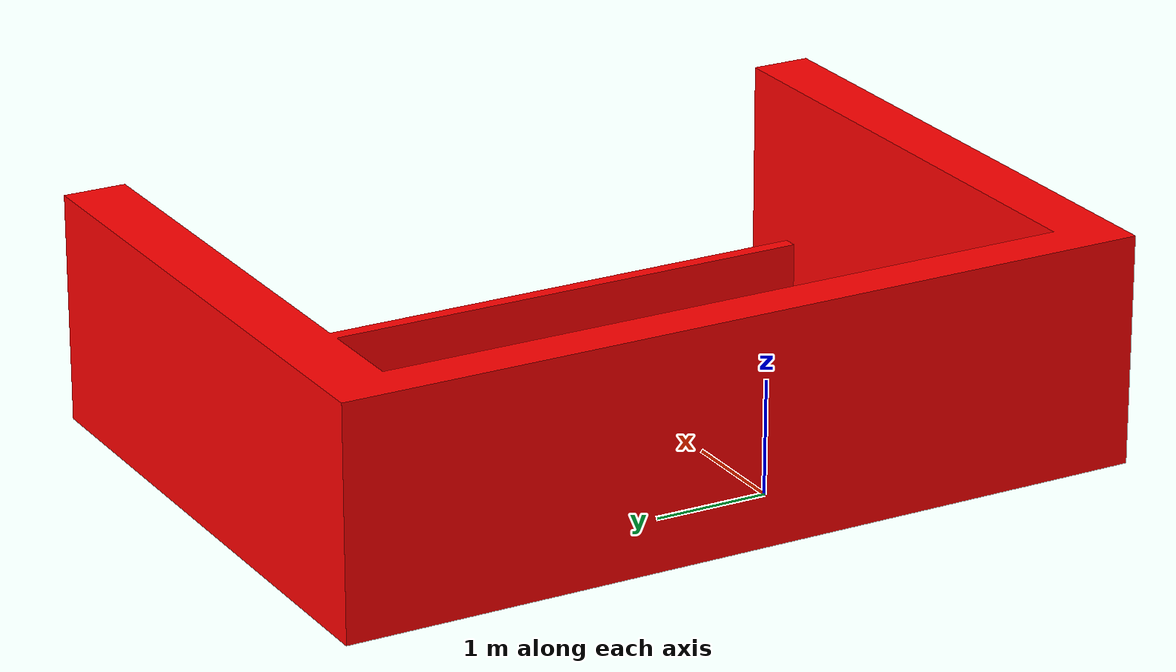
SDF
<?xml version="1.0"?>
<sdf version="1.6">
  <model name="ddw/walls">
    <link name="1_link">
      <collision name="1_col">
        <geometry>
          <mesh>
            <uri>model://ddw/walls/shape/heightmap.stl</uri>
          </mesh>
        </geometry>
      </collision>
      <visual name="1_vis">
        <geometry>
          <mesh>
            <uri>model://ddw/walls/shape/heightmap.stl</uri>
          </mesh>
        </geometry>
        <material>
          <ambient>1.0 0.0 0.0 1</ambient>
        </material>
      </visual>
      <pose>0 0 0 0 0 0</pose>
    </link>
    <static>true</static>
  </model>
</sdf>
